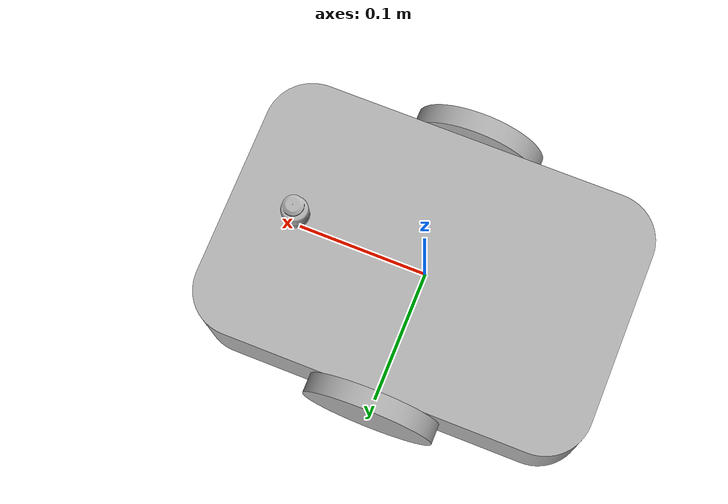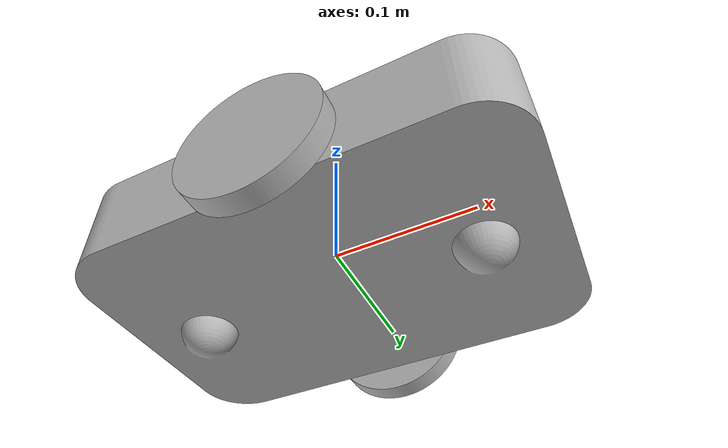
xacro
<?xml version="1.0" ?>
<robot name="amr" xmlns:xacro="http://www.ros.org/wiki/xacro">

<xacro:include filename="$(find pranesh_description)/urdf/materials.xacro" />
<xacro:include filename="$(find pranesh_description)/urdf/pranesh.trans" />
<xacro:include filename="$(find pranesh_description)/urdf/pranesh.gazebo" />
<link name="base_link">
  <inertial>
    <origin xyz="-0.0013879412797589798 8.500169907586763e-18 -0.0007813620283936445" rpy="0 0 0"/>
    <mass value="10.62598241873387"/>
    <inertia ixx="0.052255" iyy="0.100118" izz="0.138697" ixy="-0.0" iyz="-0.0" ixz="1.8e-05"/>
  </inertial>
  <visual>
    <origin xyz="0 0 0" rpy="0 0 0"/>
    <geometry>
      <mesh filename="file://$(find pranesh_description)/meshes/base_link.stl" scale="0.001 0.001 0.001"/>
    </geometry>
    <material name="silver"/>
  </visual>
  <collision>
    <origin xyz="0 0 0" rpy="0 0 0"/>
    <geometry>
      <mesh filename="file://$(find pranesh_description)/meshes/base_link.stl" scale="0.001 0.001 0.001"/>
    </geometry>
  </collision>
</link>

<link name="lidar_1">
  <inertial>
    <origin xyz="-2.7755575615628914e-17 -1.1297675401689179e-17 0.007724990058634355" rpy="0 0 0"/>
    <mass value="0.032846065366265685"/>
    <inertia ixx="2e-06" iyy="2e-06" izz="1e-06" ixy="0.0" iyz="0.0" ixz="0.0"/>
  </inertial>
  <visual>
    <origin xyz="-0.1 0.0 -0.037505" rpy="0 0 0"/>
    <geometry>
      <mesh filename="file://$(find pranesh_description)/meshes/lidar_1.stl" scale="0.001 0.001 0.001"/>
    </geometry>
    <material name="silver"/>
  </visual>
  <collision>
    <origin xyz="-0.1 0.0 -0.037505" rpy="0 0 0"/>
    <geometry>
      <mesh filename="file://$(find pranesh_description)/meshes/lidar_1.stl" scale="0.001 0.001 0.001"/>
    </geometry>
  </collision>
</link>

<link name="left_wheel_1">
  <inertial>
    <origin xyz="7.56637993952228e-17 0.007500000000000034 -1.6625305351454314e-07" rpy="0 0 0"/>
    <mass value="0.9248063374004952"/>
    <inertia ixx="0.000595" iyy="0.001156" izz="0.000595" ixy="0.0" iyz="0.0" ixz="0.0"/>
  </inertial>
  <visual>
    <origin xyz="-0.0 -0.1 -5e-06" rpy="0 0 0"/>
    <geometry>
      <mesh filename="file://$(find pranesh_description)/meshes/left_wheel_1.stl" scale="0.001 0.001 0.001"/>
    </geometry>
    <material name="silver"/>
  </visual>
  <collision>
    <origin xyz="-0.0 -0.1 -5e-06" rpy="0 0 0"/>
    <geometry>
      <mesh filename="file://$(find pranesh_description)/meshes/left_wheel_1.stl" scale="0.001 0.001 0.001"/>
    </geometry>
  </collision>
</link>

<link name="right_wheel_1">
  <inertial>
    <origin xyz="7.56637993952228e-17 -0.007499999999999979 -1.662530536342738e-07" rpy="0 0 0"/>
    <mass value="0.9248063374004952"/>
    <inertia ixx="0.000595" iyy="0.001156" izz="0.000595" ixy="0.0" iyz="-0.0" ixz="0.0"/>
  </inertial>
  <visual>
    <origin xyz="-0.0 0.1 -5e-06" rpy="0 0 0"/>
    <geometry>
      <mesh filename="file://$(find pranesh_description)/meshes/right_wheel_1.stl" scale="0.001 0.001 0.001"/>
    </geometry>
    <material name="silver"/>
  </visual>
  <collision>
    <origin xyz="-0.0 0.1 -5e-06" rpy="0 0 0"/>
    <geometry>
      <mesh filename="file://$(find pranesh_description)/meshes/right_wheel_1.stl" scale="0.001 0.001 0.001"/>
    </geometry>
  </collision>
</link>

<joint name="lidar_joint" type="fixed">
  <origin xyz="0.1 0.0 0.037505" rpy="0 0 0"/>
  <parent link="base_link"/>
  <child link="lidar_1"/>
</joint>

<joint name="left_wheel_joint" type="continuous">
  <origin xyz="0.0 0.1 5e-06" rpy="0 0 0"/>
  <parent link="base_link"/>
  <child link="left_wheel_1"/>
  <axis xyz="0.0 1.0 0.0"/>
</joint>

<joint name="right_wheel_joint" type="continuous">
  <origin xyz="0.0 -0.1 5e-06" rpy="0 0 0"/>
  <parent link="base_link"/>
  <child link="right_wheel_1"/>
  <axis xyz="0.0 1.0 -0.0"/>
</joint>

</robot>

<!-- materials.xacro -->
<robot name="pranesh" xmlns:xacro="http://www.ros.org/wiki/xacro" >

<material name="silver">
  <color rgba="0.700 0.700 0.700 1.000"/>
</material>

</robot>

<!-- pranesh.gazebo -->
<robot name="pranesh" xmlns:xacro="http://www.ros.org/wiki/xacro" >

<xacro:property name="body_color" value="Gazebo/Silver" />

<gazebo>
  <plugin name="control" filename="libgazebo_ros_control.so"/>
</gazebo>
<gazebo reference="base_link">
  <material>${body_color}</material>
  <mu1>1.0</mu1>
  <mu2>1.0</mu2>
  <self_collide>true</self_collide>
  <gravity>true</gravity>
</gazebo>

<gazebo reference="lidar_1">
  <material>${body_color}</material>
  <mu1>0.2</mu1>
  <mu2>0.2</mu2>
  <self_collide>true</self_collide>
</gazebo>

<gazebo reference="left_wheel_1">
  <material>${body_color}</material>
  <mu1>100</mu1>
  <mu2>100</mu2>
  <self_collide>true</self_collide>
</gazebo>

<gazebo reference="right_wheel_1">
  <material>${body_color}</material>
  <mu1>100</mu1>
  <mu2>100</mu2>
  <self_collide>true</self_collide>
</gazebo>

<gazebo>
    <plugin name="wheel_drive_controller" filename="libgazebo_ros_diff_drive.so">
      <left_joint>left_wheel_joint</left_joint>
      <right_joint>right_wheel_joint</right_joint>

      <wheel_separation>0.2</wheel_separation>
      <wheel_diameter>0.1</wheel_diameter>
      <max_wheel_torque>200</max_wheel_torque>
      <max_wheel_acceleration>10.0</max_wheel_acceleration>

      <!-- odometry  -->
      <odometry_source>1</odometry_source>
      <odometry_frame>odom</odometry_frame>
      <robot_base_frame>base_link</robot_base_frame>

      <publish_odom>true</publish_odom>
      <publish_odom_tf>true</publish_odom_tf>
      <publish_wheel_tf>true</publish_wheel_tf>
      <update_rate>100.0</update_rate>
    </plugin>
  </gazebo>

  <!-- Lidar Sensor (Merged into one block) -->
  <gazebo reference="lidar_1">
    <material>${body_color}</material>
    <mu1>0.2</mu1>
    <mu2>0.2</mu2>
    <self_collide>true</self_collide>
    <sensor name="laser" type="ray">
      <pose>0 0 0 0 0 0</pose>
      <visualize>true</visualize>
      <update_rate>30</update_rate>
      <ray>
        <scan>
          <horizontal>
            <samples>720</samples>
            <min_angle>-3.14</min_angle>
            <max_angle>3.14</max_angle>
          </horizontal>
        </scan>
        <range>
          <min>0.2</min>
          <max>4</max>
        </range>
      </ray>
      <plugin name="laser_controller" filename="libgazebo_ros_ray_sensor.so">
        <ros>
          <namespace>/pranesh</namespace>
          <remapping>~/out:=scan</remapping>
        </ros>
        <output_type>sensor_msgs/LaserScan</output_type>
        <frame_name>lidar_1</frame_name>
      </plugin>
    </sensor>
  </gazebo>

</robot>
